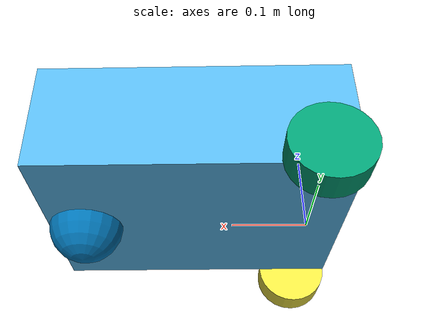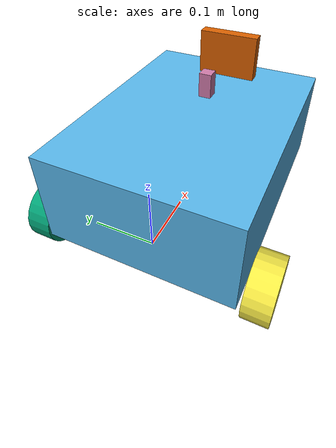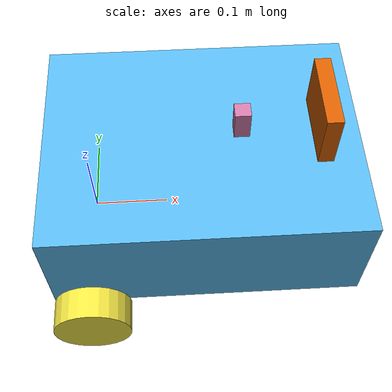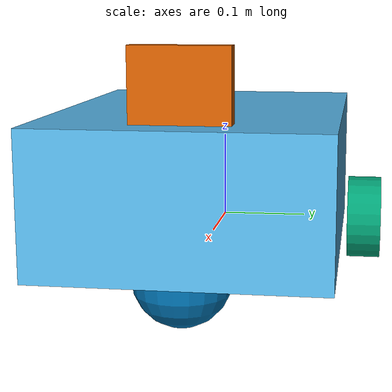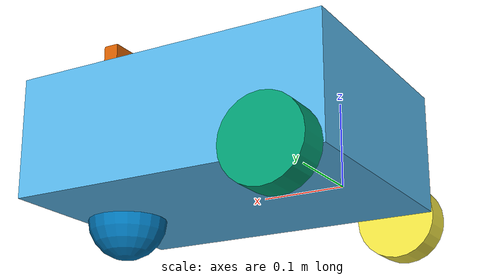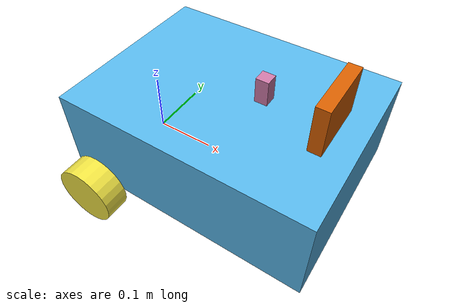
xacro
<?xml version="1.0"?>
<robot xmlns:xacro="http://www.ros.org/wiki/xacro">

    <xacro:include filename="inertial_macros.xacro"/>

    <!-- base link -->
    <link name="base_link">
    </link>

    <joint name="base_link" type="fixed">
        <parent link="base_link"/>
        <child link="chassis"/>
        <origin xyz="-0.1 0 0"/>
    </joint>

    <!-- chassis link -->
    <link name="chassis">
        <visual>
            <origin xyz="0.25 0 0.075"/>
            <geometry>
                <box size="0.4 0.3 0.15"/>
            </geometry>
        </visual>
        <collision>
            <origin xyz="0.15 0 0.075"/>
            <geometry>
                <box size="0.3 0.3 0.15"/>
            </geometry>
        </collision>
        <xacro:inertial_box mass="0.8" x="0.3" y="0.3" z="0.15">
            <origin xyz="0.15 0 0.075" rpy="0 0 0"/>
        </xacro:inertial_box>
    </link>

    <!-- left wheel joint -->
    <joint name="left_wheel_joint" type="continuous">
        <parent link="base_link"/>
        <child link="left_wheel"/>
        <origin xyz="0 0.175 0" rpy="-${pi/2} 0 0"/>
        <axis xyz="0 0 1"/>
    </joint>

    <!-- left wheel link -->
    <link name="left_wheel">
        <visual>
            <geometry>
                <cylinder radius="0.05" length="0.04"/>
            </geometry>
        </visual>
	      <collision>
	          <geometry>
	              <sphere radius="0.05"/>
	          </geometry>
	      </collision>
        <xacro:inertial_cylinder mass="0.1" length="0.04" radius="0.05">
            <origin xyz="0 0 0" rpy="0 0 0"/>
        </xacro:inertial_cylinder>
    </link>

    <!-- right wheel joint -->
    <joint name="right_wheel_joint" type="continuous">
        <parent link="base_link"/>
        <child link="right_wheel"/>
        <origin xyz="0 -0.175 0" rpy="${pi/2} 0 0"/>
        <axis xyz="0 0 -1"/>
    </joint>

    <!-- right wheel link -->
    <link name="right_wheel">
        <visual>
            <geometry>
                <cylinder radius="0.05" length="0.04"/>
            </geometry>
        </visual>
	      <collision>
	          <geometry>
	              <sphere radius="0.05"/>
	          </geometry>
	      </collision>
        <xacro:inertial_cylinder mass="0.1" length="0.04" radius="0.05">
            <origin xyz="0 0 0" rpy="0 0 0"/>
        </xacro:inertial_cylinder>
    </link>

    <!-- caster wheel joint -->
    <joint name="caster_wheel_joint" type="fixed">
        <parent link="chassis"/>
        <child link="caster_wheel"/>
        <origin xyz="0.4 0 0"/>
    </joint>

    <!-- caster wheel link -->
    <link name="caster_wheel">
        <collision>
            <geometry>
                <sphere radius="0.05"/>
            </geometry>
        </collision>
        <visual>
            <geometry>
                <sphere radius="0.05"/>
            </geometry>
        </visual>
        <xacro:inertial_sphere mass="0.1" radius="0.05">
            <origin xyz="0 0 0" rpy="0 0 0"/>
        </xacro:inertial_sphere>

    </link>

    <!-- laser_frame -->
    <link name="camera_link">
        <visual>
            <geometry>
                <box size="0.02 0.1 0.1"/>
            </geometry>¿
        </visual>
        <xacro:inertial_box mass="0.01" x="0.02" y="0.1" z="0.1">
            <origin xyz="0 0 0" rpy="0 0 0"/>
        </xacro:inertial_box>
    </link>

    <joint name="camera_joint" type="fixed">
        <parent link="chassis"/>
        <child link="camera_link"/>
        <origin xyz="0.4 0 0.175" rpy="0 0 0"/>
    </joint>

    <!-- laser_frame -->
    <link name="imu_link">
        <visual>
            <geometry>
                <box size="0.02 0.02 0.04"/>
            </geometry>
        </visual>
        <xacro:inertial_box mass="0.02" x="0.2" y="0.02" z="0.04">
            <origin xyz="0 0 0" rpy="0 0 0"/>
        </xacro:inertial_box>
    </link>

    <joint name="imu_joint" type="fixed">
        <parent link="chassis"/>
        <child link="imu_link"/>
        <origin xyz="0.3 0 0.175" rpy="0 0 0"/>
    </joint>

</robot>
